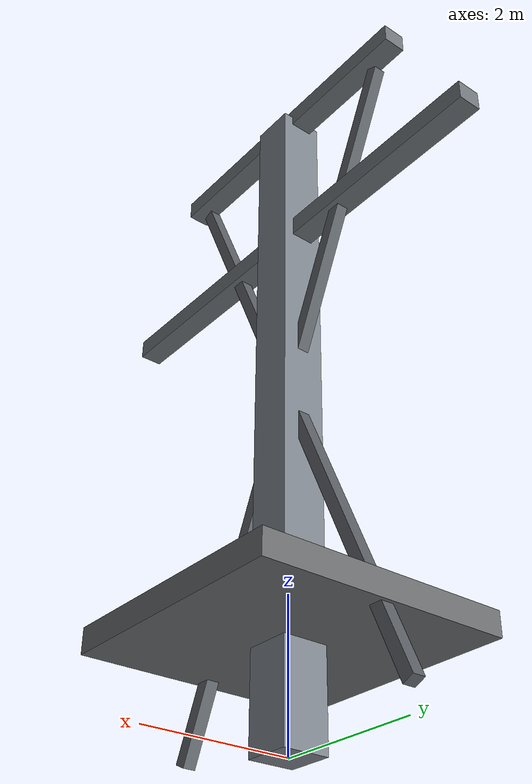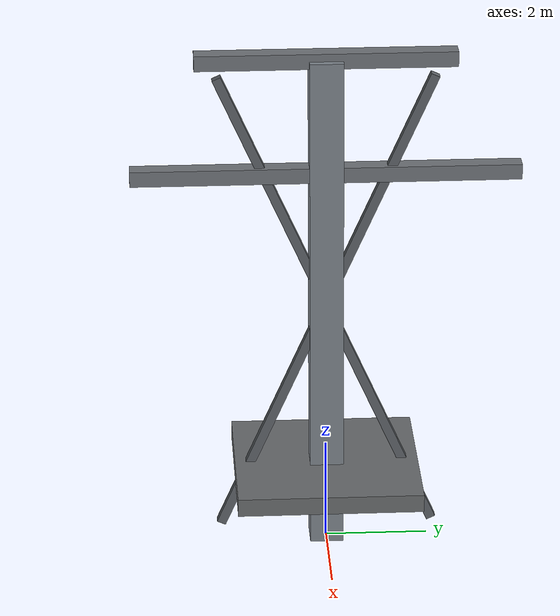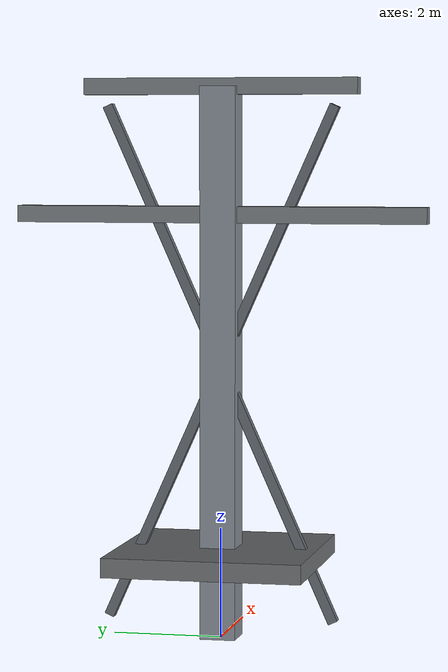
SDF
<?xml version="1.0"?>
<sdf version="1.6">
  <model name="transmission_tower">
    <static>true</static>
    <link name="tower">
      <visual name="mast"><pose>0 0 5 0 0 0</pose><geometry><box><size>0.65 0.65 10</size></box></geometry><material><ambient>0.25 0.27 0.29 1</ambient><diffuse>0.5 0.53 0.56 1</diffuse></material></visual>
      <collision name="mast_collision"><pose>0 0 5 0 0 0</pose><geometry><box><size>0.65 0.65 10</size></box></geometry></collision>
      <visual name="base"><pose>0 0 1.5 0 0 0</pose><geometry><box><size>3.6 3.6 0.35</size></box></geometry><material><diffuse>0.42 0.43 0.44 1</diffuse></material></visual>
      <visual name="arm_low"><pose>0 0 7.7 0 0 0</pose><geometry><box><size>0.35 7.5 0.30</size></box></geometry><material><diffuse>0.45 0.47 0.49 1</diffuse></material></visual>
      <visual name="arm_high"><pose>0 0 10.0 0 0 0</pose><geometry><box><size>0.35 5.0 0.30</size></box></geometry><material><diffuse>0.45 0.47 0.49 1</diffuse></material></visual>
      <visual name="brace_a"><pose>0 0 5 0.42 0 0</pose><geometry><box><size>0.18 0.18 10.2</size></box></geometry><material><diffuse>0.38 0.40 0.42 1</diffuse></material></visual>
      <visual name="brace_b"><pose>0 0 5 -0.42 0 0</pose><geometry><box><size>0.18 0.18 10.2</size></box></geometry><material><diffuse>0.38 0.40 0.42 1</diffuse></material></visual>
    </link>
  </model>
</sdf>
